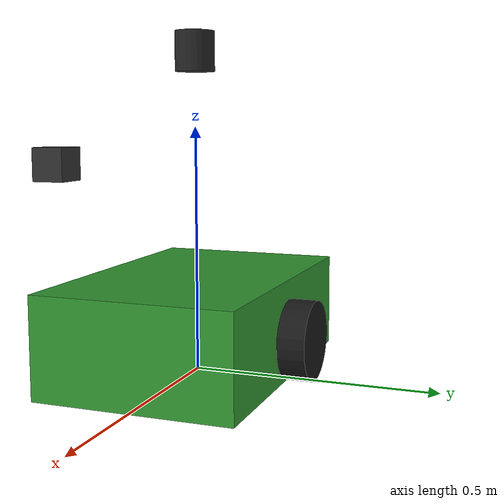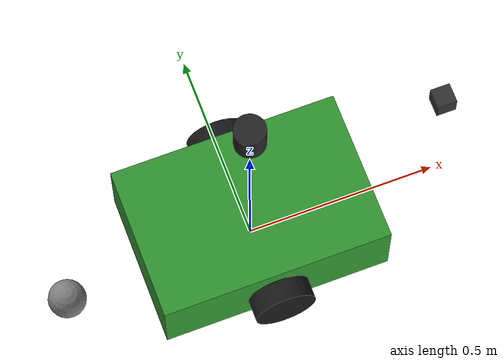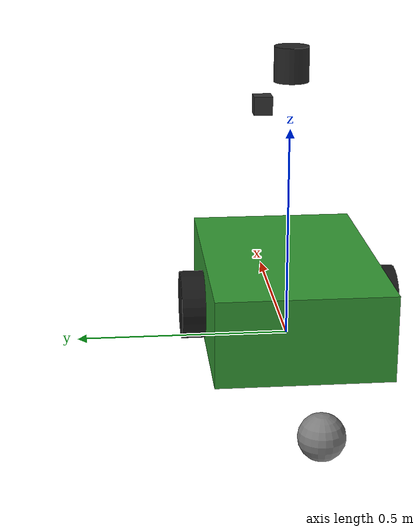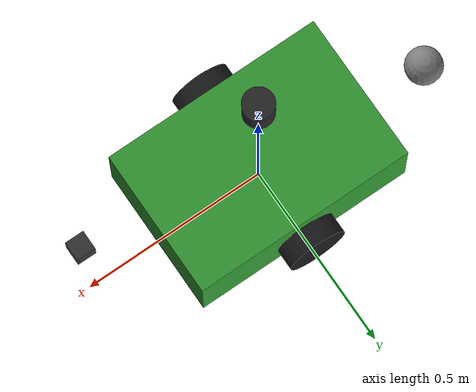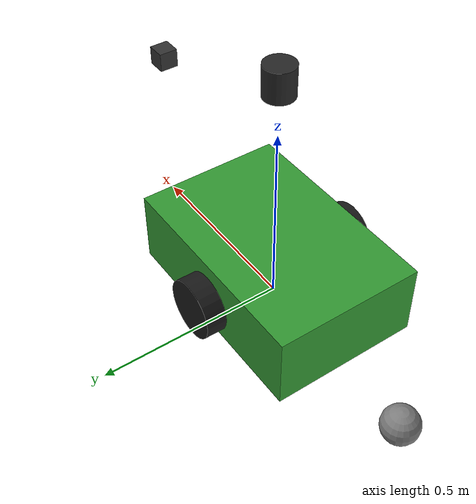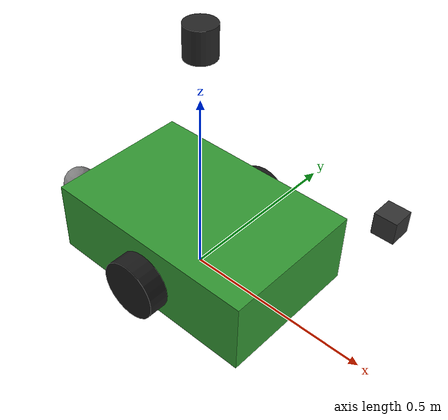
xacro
<?xml version="1.0"?>
<!-- Dual camera differential drive robot for Gazebo -->
<robot xmlns:xacro="http://www.ros.org/wiki/xacro" name="dual_camera_bot">
  <xacro:property name="pi" value="3.1415926535897931"/>
  <xacro:property name="wheel_radius" value="0.08"/>
  <xacro:property name="wheel_separation" value="0.45"/>
  <xacro:property name="base_mass" value="15.0"/>
  <xacro:property name="wheel_mass" value="1.0"/>

  <link name="base_link">
    <inertial>
      <origin xyz="0 0 0" rpy="0 0 0"/>
      <mass value="${base_mass}"/>
      <inertia ixx="1.0" ixy="0" ixz="0" iyy="1.0" iyz="0" izz="1.0"/>
    </inertial>
    <visual>
      <origin xyz="0 0 0.1" rpy="0 0 0"/>
      <geometry>
        <box size="0.6 0.4 0.2"/>
      </geometry>
      <material name="chassis_green">
        <color rgba="0.2 0.6 0.2 1"/>
      </material>
    </visual>
    <collision>
      <origin xyz="0 0 0.1" rpy="0 0 0"/>
      <geometry>
        <box size="0.6 0.4 0.2"/>
      </geometry>
    </collision>
  </link>

  <link name="left_wheel_link">
    <inertial>
      <origin xyz="0 0 0" rpy="0 0 0"/>
      <mass value="${wheel_mass}"/>
      <inertia ixx="0.01" ixy="0" ixz="0" iyy="0.01" iyz="0" izz="0.005"/>
    </inertial>
    <visual>
      <origin xyz="0 0 0" rpy="${pi/2} 0 0"/>
      <geometry>
        <cylinder length="0.06" radius="${wheel_radius}"/>
      </geometry>
      <material name="wheel_black">
        <color rgba="0.1 0.1 0.1 1"/>
      </material>
    </visual>
    <collision>
      <origin xyz="0 0 0" rpy="${pi/2} 0 0"/>
      <geometry>
        <cylinder length="0.06" radius="${wheel_radius}"/>
      </geometry>
    </collision>
  </link>

  <link name="right_wheel_link">
    <inertial>
      <origin xyz="0 0 0" rpy="0 0 0"/>
      <mass value="${wheel_mass}"/>
      <inertia ixx="0.01" ixy="0" ixz="0" iyy="0.01" iyz="0" izz="0.005"/>
    </inertial>
    <visual>
      <origin xyz="0 0 0" rpy="${pi/2} 0 0"/>
      <geometry>
        <cylinder length="0.06" radius="${wheel_radius}"/>
      </geometry>
      <material name="wheel_black">
        <color rgba="0.1 0.1 0.1 1"/>
      </material>
    </visual>
    <collision>
      <origin xyz="0 0 0" rpy="${pi/2} 0 0"/>
      <geometry>
        <cylinder length="0.06" radius="${wheel_radius}"/>
      </geometry>
    </collision>
  </link>

  <joint name="left_wheel_joint" type="continuous">
    <origin xyz="0 ${wheel_separation/2} 0.08" rpy="0 0 0"/>
    <parent link="base_link"/>
    <child link="left_wheel_link"/>
    <axis xyz="0 1 0"/>
    <limit effort="15" velocity="10"/>
  </joint>

  <joint name="right_wheel_joint" type="continuous">
    <origin xyz="0 -${wheel_separation/2} 0.08" rpy="0 0 0"/>
    <parent link="base_link"/>
    <child link="right_wheel_link"/>
    <axis xyz="0 1 0"/>
    <limit effort="15" velocity="10"/>
  </joint>

  <link name="caster_link">
    <visual>
      <origin xyz="-0.25 0 0" rpy="0 0 0"/>
      <geometry>
        <sphere radius="0.05"/>
      </geometry>
      <material name="caster_grey">
        <color rgba="0.5 0.5 0.5 1"/>
      </material>
    </visual>
    <collision>
      <origin xyz="-0.25 0 0" rpy="0 0 0"/>
      <geometry>
        <sphere radius="0.05"/>
      </geometry>
    </collision>
    <inertial>
      <origin xyz="-0.25 0 0" rpy="0 0 0"/>
      <mass value="0.5"/>
      <inertia ixx="0.001" ixy="0" ixz="0" iyy="0.001" iyz="0" izz="0.001"/>
    </inertial>
  </link>

  <joint name="caster_joint" type="fixed">
    <origin xyz="-0.25 0 -0.02" rpy="0 0 0"/>
    <parent link="base_link"/>
    <child link="caster_link"/>
  </joint>

  <link name="rgb_camera_link">
    <visual>
      <origin xyz="0.25 0 0.25" rpy="0 0 0"/>
      <geometry>
        <box size="0.05 0.05 0.05"/>
      </geometry>
      <material name="rgb_camera_body">
        <color rgba="0.2 0.2 0.2 1"/>
      </material>
    </visual>
    <collision>
      <origin xyz="0.25 0 0.25" rpy="0 0 0"/>
      <geometry>
        <box size="0.05 0.05 0.05"/>
      </geometry>
    </collision>
    <inertial>
      <origin xyz="0.25 0 0.25" rpy="0 0 0"/>
      <mass value="0.1"/>
      <inertia ixx="0.0001" ixy="0" ixz="0" iyy="0.0001" iyz="0" izz="0.0001"/>
    </inertial>
  </link>

  <joint name="rgb_camera_joint" type="fixed">
    <origin xyz="0.25 0 0.2" rpy="0 0 0"/>
    <parent link="base_link"/>
    <child link="rgb_camera_link"/>
  </joint>

  <link name="panorama_camera_link">
    <visual>
      <origin xyz="0 0 0.35" rpy="0 0 0"/>
      <geometry>
        <cylinder radius="0.04" length="0.08"/>
      </geometry>
      <material name="panorama_body">
        <color rgba="0.15 0.15 0.15 1"/>
      </material>
    </visual>
    <collision>
      <origin xyz="0 0 0.35" rpy="0 0 0"/>
      <geometry>
        <cylinder radius="0.04" length="0.08"/>
      </geometry>
    </collision>
    <inertial>
      <origin xyz="0 0 0.35" rpy="0 0 0"/>
      <mass value="0.12"/>
      <inertia ixx="0.0002" ixy="0" ixz="0" iyy="0.0002" iyz="0" izz="0.0002"/>
    </inertial>
  </link>

  <joint name="panorama_camera_joint" type="fixed">
    <origin xyz="0 0 0.3" rpy="0 0 0"/>
    <parent link="base_link"/>
    <child link="panorama_camera_link"/>
  </joint>

  <transmission name="left_wheel_transmission">
    <type>transmission_interface/SimpleTransmission</type>
    <actuator name="left_wheel_motor">
      <hardwareInterface>hardware_interface/VelocityJointInterface</hardwareInterface>
      <mechanicalReduction>1</mechanicalReduction>
    </actuator>
    <joint name="left_wheel_joint">
      <hardwareInterface>hardware_interface/VelocityJointInterface</hardwareInterface>
    </joint>
  </transmission>

  <transmission name="right_wheel_transmission">
    <type>transmission_interface/SimpleTransmission</type>
    <actuator name="right_wheel_motor">
      <hardwareInterface>hardware_interface/VelocityJointInterface</hardwareInterface>
      <mechanicalReduction>1</mechanicalReduction>
    </actuator>
    <joint name="right_wheel_joint">
      <hardwareInterface>hardware_interface/VelocityJointInterface</hardwareInterface>
    </joint>
  </transmission>

  <gazebo>
    <plugin name="diff_drive" filename="libgazebo_ros_diff_drive.so">
      <ros>
        <namespace>/dual_camera_bot</namespace>
        <remapping>cmd_vel:=cmd_vel</remapping>
        <remapping>odom:=odom</remapping>
      </ros>
      <update_rate>60</update_rate>
      <left_joint>left_wheel_joint</left_joint>
      <right_joint>right_wheel_joint</right_joint>
      <wheel_separation>${wheel_separation}</wheel_separation>
      <wheel_diameter>${2 * wheel_radius}</wheel_diameter>
      <cmd_vel_topic>cmd_vel</cmd_vel_topic>
      <odom_topic>odom</odom_topic>
      <odom_frame>odom</odom_frame>
      <robot_base_frame>base_link</robot_base_frame>
      <publish_tf>true</publish_tf>
      <publish_odom>true</publish_odom>
    </plugin>
  </gazebo>

  <gazebo reference="left_wheel_link">
    <mu1>10</mu1>
    <mu2>10</mu2>
    <kp>100000.0</kp>
    <kd>1.0</kd>
  </gazebo>

  <gazebo reference="right_wheel_link">
    <mu1>10</mu1>
    <mu2>10</mu2>
    <kp>100000.0</kp>
    <kd>1.0</kd>
  </gazebo>

  <gazebo reference="rgb_camera_link">
    <sensor name="rgb_camera" type="camera">
      <always_on>true</always_on>
      <update_rate>30</update_rate>
      <visualize>true</visualize>
      <camera>
        <horizontal_fov>1.047</horizontal_fov>
        <image>
          <width>1280</width>
          <height>720</height>
          <format>R8G8B8</format>
        </image>
        <clip>
          <near>0.05</near>
          <far>20</far>
        </clip>
      </camera>
      <plugin name="rgb_camera_controller" filename="libgazebo_ros_camera.so">
        <ros>
          <namespace>/dual_camera_bot</namespace>
          <remapping>image:=rgb/image_raw</remapping>
          <remapping>camera_info:=rgb/camera_info</remapping>
        </ros>
        <camera_name>rgb</camera_name>
        <frame_name>rgb_camera_link</frame_name>
      </plugin>
    </sensor>
  </gazebo>

  <gazebo reference="panorama_camera_link">
    <sensor name="panorama_camera" type="camera">
      <always_on>true</always_on>
      <update_rate>15</update_rate>
      <visualize>true</visualize>
      <camera>
        <horizontal_fov>6.28318530718</horizontal_fov>
        <image>
          <width>2048</width>
          <height>1024</height>
          <format>R8G8B8</format>
        </image>
        <clip>
          <near>0.05</near>
          <far>50</far>
        </clip>
        <distortion>
          <k1>0.0</k1>
          <k2>0.0</k2>
          <k3>0.0</k3>
          <p1>0.0</p1>
          <p2>0.0</p2>
        </distortion>
      </camera>
      <plugin name="panorama_camera_controller" filename="libgazebo_ros_camera.so">
        <ros>
          <namespace>/dual_camera_bot</namespace>
          <remapping>image:=panorama/image_raw</remapping>
          <remapping>camera_info:=panorama/camera_info</remapping>
        </ros>
        <camera_name>panorama</camera_name>
        <frame_name>panorama_camera_link</frame_name>
      </plugin>
    </sensor>
  </gazebo>
</robot>
